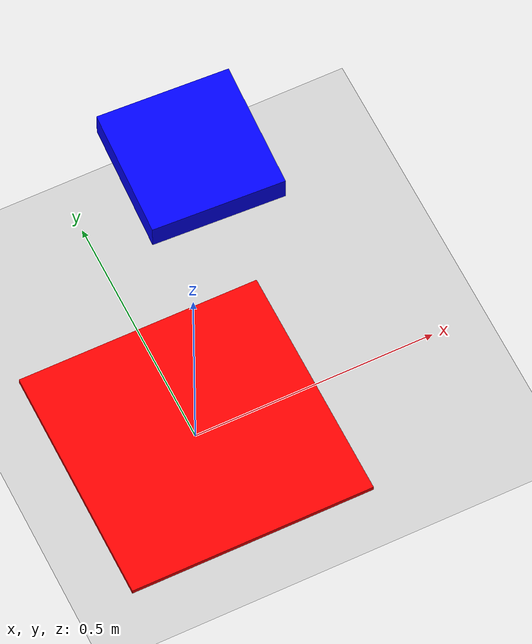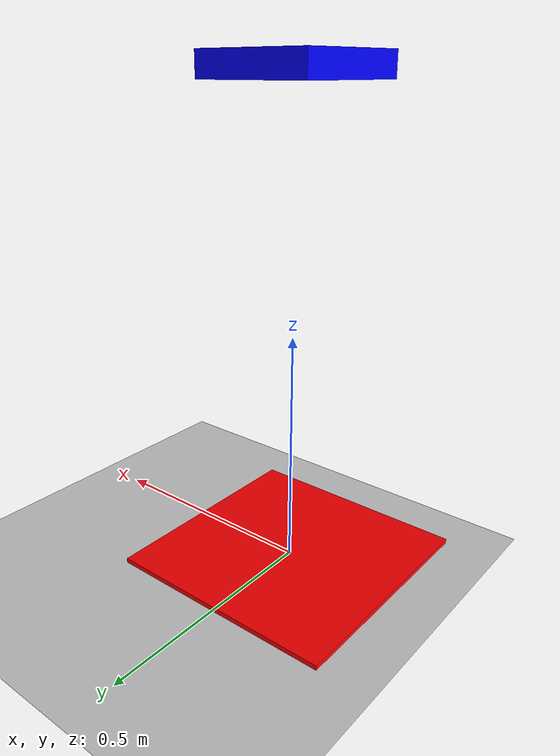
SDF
<sdf version='1.10'>
  <world name='apply_joint_force'>
    <plugin name='gz::sim::systems::Physics' filename='gz-sim-physics-system'/>
    <plugin name='gz::sim::systems::SceneBroadcaster' filename='gz-sim-scene-broadcaster-system'/>
    <gravity>0 0 -9.8000000000000007</gravity>
    <magnetic_field>5.5644999999999998e-06 2.2875799999999999e-05 -4.2388400000000002e-05</magnetic_field>
    <atmosphere type='adiabatic'/>
    <physics type='ode'>
      <max_step_size>0.001</max_step_size>
      <real_time_factor>1</real_time_factor>
      <real_time_update_rate>1000</real_time_update_rate>
    </physics>
    <scene>
      <ambient>0.400000006 0.400000006 0.400000006 1</ambient>
      <background>0.699999988 0.699999988 0.699999988 1</background>
      <shadows>true</shadows>
    </scene>
    <model name='ground_plane'>
      <static>true</static>
      <link name='link'>
        <collision name='collision'>
          <geometry>
            <plane>
              <normal>0 0 1</normal>
              <size>100 100</size>
            </plane>
          </geometry>
          <surface>
            <friction>
              <ode/>
            </friction>
            <bounce/>
            <contact/>
          </surface>
        </collision>
        <visual name='visual'>
          <geometry>
            <plane>
              <normal>0 0 1</normal>
              <size>100 100</size>
            </plane>
          </geometry>
          <material>
            <ambient>0.800000012 0.800000012 0.800000012 1</ambient>
            <diffuse>0.800000012 0.800000012 0.800000012 1</diffuse>
            <specular>0.800000012 0.800000012 0.800000012 1</specular>
          </material>
        </visual>
        <pose>0 0 0 0 0 0</pose>
        <inertial>
          <pose>0 0 0 0 0 0</pose>
          <mass>1</mass>
          <inertia>
            <ixx>1</ixx>
            <ixy>0</ixy>
            <ixz>0</ixz>
            <iyy>1</iyy>
            <iyz>0</iyz>
            <izz>1</izz>
          </inertia>
        </inertial>
        <enable_wind>false</enable_wind>
      </link>
      <pose>0 0 0 0 0 0</pose>
      <self_collide>false</self_collide>
    </model>
    <model name='joint_force_example'>
      <pose>-5.7572015418895297e-21 -2.3550020699082842e-21 0.004999433334390401 1.0812479460478314e-18 -5.1223171609773016e-19 -1.9993973761785191e-10</pose>
      <link name='base_link'>
        <pose>0 0 0 0 0 0</pose>
        <inertial>
          <inertia>
            <ixx>2.5009999999999999</ixx>
            <ixy>0</ixy>
            <ixz>0</ixz>
            <iyy>2.5009999999999999</iyy>
            <iyz>0</iyz>
            <izz>5</izz>
          </inertia>
          <mass>120</mass>
          <pose>0 0 0 0 0 0</pose>
        </inertial>
        <visual name='base_visual'>
          <pose>0 0 0 0 0 0</pose>
          <geometry>
            <box>
              <size>0.5 0.5 0.01</size>
            </box>
          </geometry>
          <material>
            <ambient>1 0 0 1</ambient>
            <diffuse>1 0 0 1</diffuse>
            <specular>1 0 0 1</specular>
          </material>
        </visual>
        <collision name='base_collision'>
          <pose>0 0 0 0 0 0</pose>
          <geometry>
            <box>
              <size>0.5 0.5 0.01</size>
            </box>
          </geometry>
          <surface>
            <friction>
              <ode/>
            </friction>
            <bounce/>
            <contact/>
          </surface>
        </collision>
        <enable_wind>false</enable_wind>
      </link>
      <link name='rotor'>
        <pose>3.9804734317454891e-19 -6.4074402578746739e-19 1.0000005524156419 -5.3234270554793651e-19 5.7637739555137776e-19 -1.6174125230943497</pose>
        <inertial>
          <pose>0 0 0 0 0 0</pose>
          <inertia>
            <ixx>0.032000000000000001</ixx>
            <ixy>0</ixy>
            <ixz>0</ixz>
            <iyy>0.032000000000000001</iyy>
            <iyz>0</iyz>
            <izz>0.00012</izz>
          </inertia>
          <mass>0.59999999999999998</mass>
        </inertial>
        <visual name='visual'>
          <geometry>
            <box>
              <size>0.25 0.25 0.050000000000000003</size>
            </box>
          </geometry>
          <material>
            <ambient>0 0 1 1</ambient>
            <diffuse>0 0 1 1</diffuse>
            <specular>0 0 1 1</specular>
          </material>
        </visual>
        <collision name='collision'>
          <geometry>
            <box>
              <size>0.25 0.25 0.050000000000000003</size>
            </box>
          </geometry>
          <surface>
            <friction>
              <ode/>
            </friction>
            <bounce/>
            <contact/>
          </surface>
        </collision>
        <enable_wind>false</enable_wind>
      </link>
      <joint name='j1' type='revolute'>
        <pose>0 0 -0.5 0 0 0</pose>
        <parent>base_link</parent>
        <child>rotor</child>
        <axis>
          <xyz>0 0 1</xyz>
          <limit>
            <lower>-inf</lower>
            <upper>inf</upper>
            <effort>inf</effort>
            <velocity>inf</velocity>
            <stiffness>100000000</stiffness>
            <dissipation>1</dissipation>
          </limit>
          <dynamics>
            <spring_reference>0</spring_reference>
            <spring_stiffness>0</spring_stiffness>
            <damping>0.0001</damping>
            <friction>0</friction>
          </dynamics>
        </axis>
      </joint>
      <plugin name='gz::sim::systems::ApplyJointForce' filename='gz-sim-apply-joint-force-system'>
        <joint_name>j1</joint_name>
        <force>123</force>
      </plugin>
      <static>false</static>
      <self_collide>false</self_collide>
    </model>
    <light name='sun' type='directional'>
      <pose>0 0 10 0 0 0</pose>
      <cast_shadows>true</cast_shadows>
      <intensity>1</intensity>
      <direction>-0.5 0.10000000000000001 -0.90000000000000002</direction>
      <diffuse>0.800000012 0.800000012 0.800000012 1</diffuse>
      <specular>0.200000003 0.200000003 0.200000003 1</specular>
      <attenuation>
        <range>1000</range>
        <linear>0.0099999997764825821</linear>
        <constant>0.89999997615814209</constant>
        <quadratic>0.0010000000474974513</quadratic>
      </attenuation>
      <spot>
        <inner_angle>0</inner_angle>
        <outer_angle>0</outer_angle>
        <falloff>0</falloff>
      </spot>
    </light>
  </world>
</sdf>
